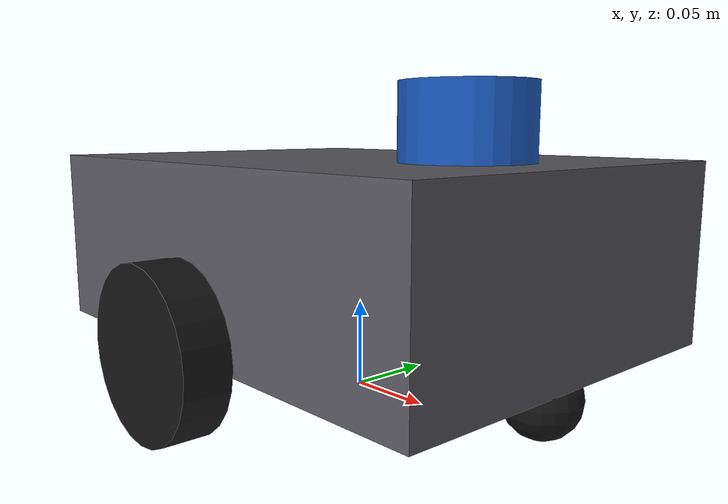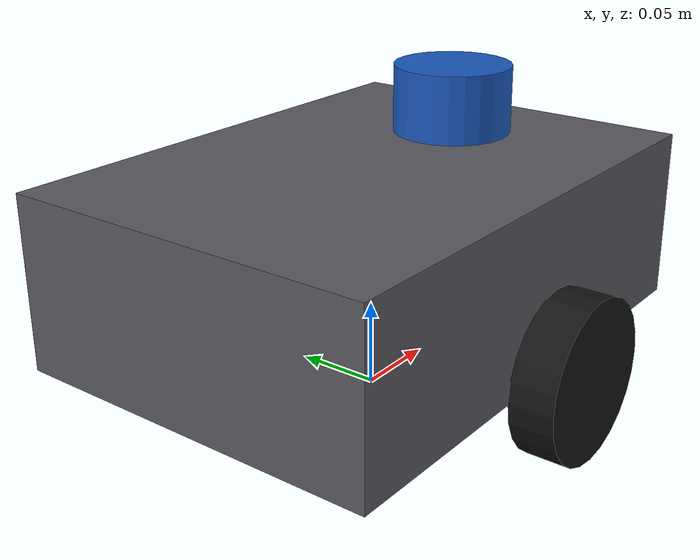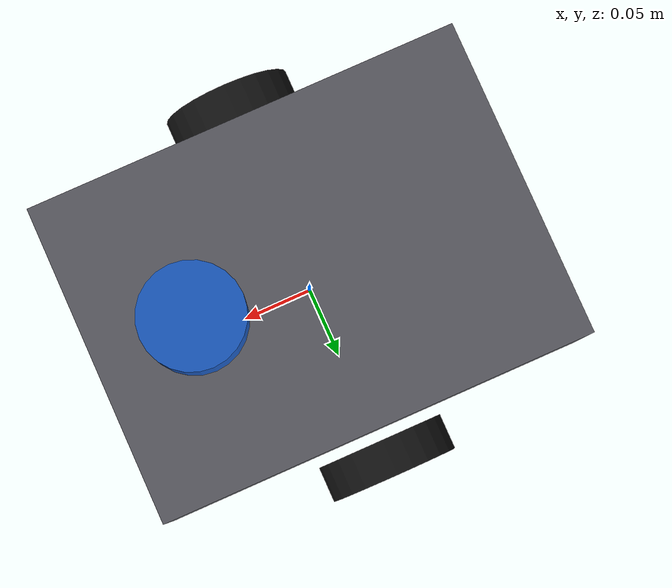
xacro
<?xml version="1.0"?>
<robot xmlns:xacro="http://www.ros.org/wiki/xacro" name="bot">

  <!-- Chassis and drivetrain dimensions (metres). Keep in sync with
       bot_base/config/base.yaml, which is the runtime source of truth
       for kinematics. -->
  <xacro:property name="chassis_length" value="0.30"/>
  <xacro:property name="chassis_width"  value="0.22"/>
  <xacro:property name="chassis_height" value="0.10"/>
  <xacro:property name="wheel_radius"   value="0.045"/>
  <xacro:property name="wheel_width"    value="0.025"/>
  <xacro:property name="wheel_separation" value="0.26"/>
  <xacro:property name="caster_radius"  value="0.02"/>

  <material name="body_grey"><color rgba="0.35 0.35 0.38 1.0"/></material>
  <material name="wheel_black"><color rgba="0.08 0.08 0.08 1.0"/></material>
  <material name="sensor_blue"><color rgba="0.10 0.35 0.75 1.0"/></material>

  <link name="base_footprint"/>

  <link name="base_link">
    <visual>
      <geometry><box size="${chassis_length} ${chassis_width} ${chassis_height}"/></geometry>
      <material name="body_grey"/>
    </visual>
    <collision>
      <geometry><box size="${chassis_length} ${chassis_width} ${chassis_height}"/></geometry>
    </collision>
    <inertial>
      <mass value="2.0"/>
      <inertia ixx="0.01" ixy="0" ixz="0" iyy="0.02" iyz="0" izz="0.02"/>
    </inertial>
  </link>

  <joint name="base_footprint_joint" type="fixed">
    <parent link="base_footprint"/>
    <child link="base_link"/>
    <origin xyz="0 0 ${wheel_radius + chassis_height/2 - 0.01}"/>
  </joint>

  <xacro:macro name="drive_wheel" params="prefix y_offset">
    <link name="${prefix}_wheel_link">
      <visual>
        <origin rpy="${pi/2} 0 0"/>
        <geometry><cylinder radius="${wheel_radius}" length="${wheel_width}"/></geometry>
        <material name="wheel_black"/>
      </visual>
      <collision>
        <origin rpy="${pi/2} 0 0"/>
        <geometry><cylinder radius="${wheel_radius}" length="${wheel_width}"/></geometry>
      </collision>
      <inertial>
        <mass value="0.15"/>
        <inertia ixx="0.0001" ixy="0" ixz="0" iyy="0.0001" iyz="0" izz="0.0002"/>
      </inertial>
    </link>
    <joint name="${prefix}_wheel_joint" type="continuous">
      <parent link="base_link"/>
      <child link="${prefix}_wheel_link"/>
      <origin xyz="0 ${y_offset} ${-chassis_height/2 + 0.01}"/>
      <axis xyz="0 1 0"/>
    </joint>
  </xacro:macro>

  <xacro:drive_wheel prefix="left"  y_offset="${wheel_separation/2}"/>
  <xacro:drive_wheel prefix="right" y_offset="${-wheel_separation/2}"/>

  <link name="caster_link">
    <visual>
      <geometry><sphere radius="${caster_radius}"/></geometry>
      <material name="wheel_black"/>
    </visual>
    <collision>
      <geometry><sphere radius="${caster_radius}"/></geometry>
    </collision>
    <inertial>
      <mass value="0.05"/>
      <inertia ixx="0.00001" ixy="0" ixz="0" iyy="0.00001" iyz="0" izz="0.00001"/>
    </inertial>
  </link>

  <joint name="caster_joint" type="fixed">
    <parent link="base_link"/>
    <child link="caster_link"/>
    <origin xyz="${chassis_length/2 - caster_radius} 0 ${-chassis_height/2 - caster_radius + 0.01}"/>
  </joint>

  <link name="laser_link">
    <visual>
      <geometry><cylinder radius="0.035" length="0.04"/></geometry>
      <material name="sensor_blue"/>
    </visual>
    <collision>
      <geometry><cylinder radius="0.035" length="0.04"/></geometry>
    </collision>
    <inertial>
      <mass value="0.1"/>
      <inertia ixx="0.0001" ixy="0" ixz="0" iyy="0.0001" iyz="0" izz="0.0001"/>
    </inertial>
  </link>

  <joint name="laser_joint" type="fixed">
    <parent link="base_link"/>
    <child link="laser_link"/>
    <origin xyz="0.08 0 ${chassis_height/2 + 0.02}"/>
  </joint>

  <link name="imu_link"/>
  <joint name="imu_joint" type="fixed">
    <parent link="base_link"/>
    <child link="imu_link"/>
    <origin xyz="0 0 0"/>
  </joint>

</robot>
